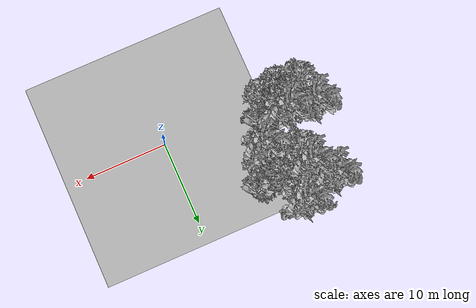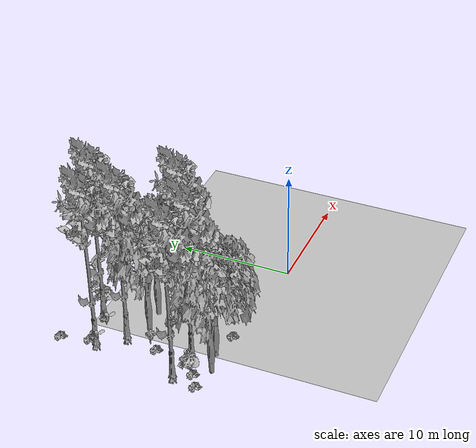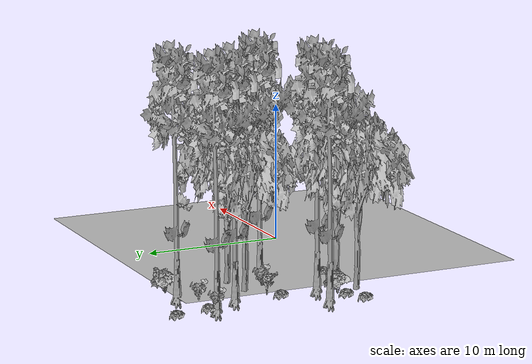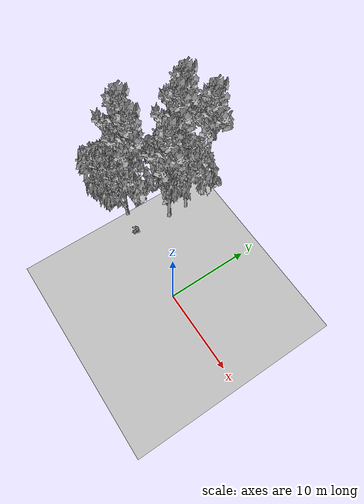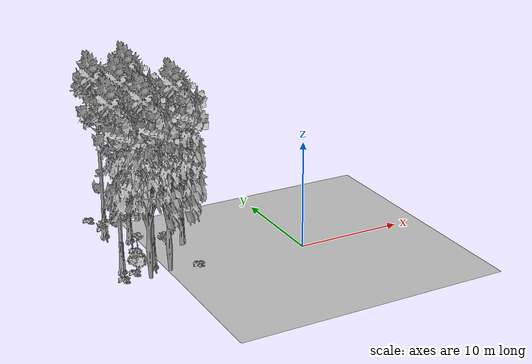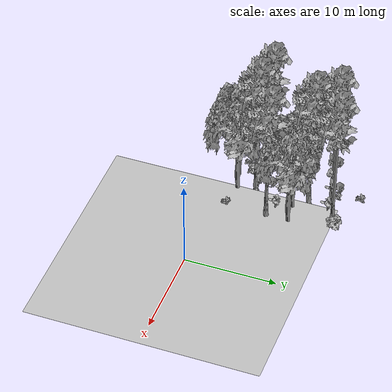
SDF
<sdf version="1.7">
 <world name="default">
  <model name="ground_plane">
   <static>1</static>
   <link name="link">
    <collision name="collision">
     <pose>-50 0 0 0 -0 0</pose>
     <geometry><plane><normal>0 0 1</normal><size>80 80</size></plane></geometry>
     <surface><contact><ode><min_depth>0.01</min_depth><max_vel>0</max_vel></ode></contact></surface>
    </collision>
    <visual name="grass">
     <cast_shadows>0</cast_shadows>
     <geometry>
      <mesh>
       <scale>0.46714285714285714 0.46714285714285714 0.1</scale>
       <uri>file://grass_plane/meshes/grass_plane.dae</uri>
      </mesh>
     </geometry>
    </visual>
   </link>
  </model>
  <model name="Tree 18">
   <static>1</static>
   <pose>-14.675197095112946 11.266320430562232 0 1.57079 -0 0</pose>
   <link name="link">
    <collision name="collision">
     <geometry><mesh><scale>3.5 5 3.5</scale><uri>model://tree_9/meshes/tree_9.obj</uri></mesh></geometry>
    </collision>
    <visual name="visual">
     <geometry><mesh><scale>3.5 5 3.5</scale><uri>model://tree_9/meshes/tree_9.obj</uri></mesh></geometry>
    </visual>
   </link>
  </model>
  <model name="Tree 24">
   <static>1</static>
   <pose>-14.497213452491316 0.858952401795392 0 1.57079 -0 0</pose>
   <link name="link">
    <collision name="collision">
     <geometry><mesh><scale>3.5 5 3.5</scale><uri>model://tree_2/meshes/tree_2.obj</uri></mesh></geometry>
    </collision>
    <visual name="visual">
     <geometry><mesh><scale>3.5 5 3.5</scale><uri>model://tree_2/meshes/tree_2.obj</uri></mesh></geometry>
    </visual>
   </link>
  </model>
  <model name="Tree 126">
   <static>1</static>
   <pose>-13.16946752182264 3.2214218753032213 0 1.57079 -0 0</pose>
   <link name="link">
    <collision name="collision">
     <geometry><mesh><scale>3.5 5 3.5</scale><uri>model://tree_9/meshes/tree_9.obj</uri></mesh></geometry>
    </collision>
    <visual name="visual">
     <geometry><mesh><scale>3.5 5 3.5</scale><uri>model://tree_9/meshes/tree_9.obj</uri></mesh></geometry>
    </visual>
   </link>
  </model>
  <model name="Tree 199">
   <static>1</static>
   <pose>-12.454922618919966 1.3901071848798523 0 1.57079 -0 0</pose>
   <link name="link">
    <collision name="collision">
     <geometry><mesh><scale>3.5 5 3.5</scale><uri>model://tree_2/meshes/tree_2.obj</uri></mesh></geometry>
    </collision>
    <visual name="visual">
     <geometry><mesh><scale>3.5 5 3.5</scale><uri>model://tree_2/meshes/tree_2.obj</uri></mesh></geometry>
    </visual>
   </link>
  </model>
  <model name="Tree 204">
   <static>1</static>
   <pose>-9.372004502115061 8.09695950699546 0 1.57079 -0 0</pose>
   <link name="link">
    <collision name="collision">
     <geometry><mesh><scale>3.5 5 3.5</scale><uri>model://tree_2/meshes/tree_2.obj</uri></mesh></geometry>
    </collision>
    <visual name="visual">
     <geometry><mesh><scale>3.5 5 3.5</scale><uri>model://tree_2/meshes/tree_2.obj</uri></mesh></geometry>
    </visual>
   </link>
  </model>
  <model name="Tree 261">
   <static>1</static>
   <pose>-15.938443376063656 3.6448453752847456 0 1.57079 -0 0</pose>
   <link name="link">
    <collision name="collision">
     <geometry><mesh><scale>3.5 5 3.5</scale><uri>model://tree_9/meshes/tree_9.obj</uri></mesh></geometry>
    </collision>
    <visual name="visual">
     <geometry><mesh><scale>3.5 5 3.5</scale><uri>model://tree_9/meshes/tree_9.obj</uri></mesh></geometry>
    </visual>
   </link>
  </model>
  <model name="Tree 295">
   <static>1</static>
   <pose>-11.642984708136105 7.8257958188273165 0 1.57079 -0 0</pose>
   <link name="link">
    <collision name="collision">
     <geometry><mesh><scale>3.5 5 3.5</scale><uri>model://tree_2/meshes/tree_2.obj</uri></mesh></geometry>
    </collision>
    <visual name="visual">
     <geometry><mesh><scale>3.5 5 3.5</scale><uri>model://tree_2/meshes/tree_2.obj</uri></mesh></geometry>
    </visual>
   </link>
  </model>
  <model name="Tree 356">
   <static>1</static>
   <pose>-10.916500226961418 12.506268063212787 0 1.57079 -0 0</pose>
   <link name="link">
    <collision name="collision">
     <geometry><mesh><scale>3.5 5 3.5</scale><uri>model://tree_9/meshes/tree_9.obj</uri></mesh></geometry>
    </collision>
    <visual name="visual">
     <geometry><mesh><scale>3.5 5 3.5</scale><uri>model://tree_9/meshes/tree_9.obj</uri></mesh></geometry>
    </visual>
   </link>
  </model>
  <model name="Tree 411">
   <static>1</static>
   <pose>-9.29969918573861 5.669478298437085 0 1.57079 -0 0</pose>
   <link name="link">
    <collision name="collision">
     <geometry><mesh><scale>3.5 5 3.5</scale><uri>model://tree_9/meshes/tree_9.obj</uri></mesh></geometry>
    </collision>
    <visual name="visual">
     <geometry><mesh><scale>3.5 5 3.5</scale><uri>model://tree_9/meshes/tree_9.obj</uri></mesh></geometry>
    </visual>
   </link>
  </model>
  <model name="Tree 478">
   <static>1</static>
   <pose>-13.016524943283251 9.210867996169611 0 1.57079 -0 0</pose>
   <link name="link">
    <collision name="collision">
     <geometry><mesh><scale>3.5 5 3.5</scale><uri>model://tree_9/meshes/tree_9.obj</uri></mesh></geometry>
    </collision>
    <visual name="visual">
     <geometry><mesh><scale>3.5 5 3.5</scale><uri>model://tree_9/meshes/tree_9.obj</uri></mesh></geometry>
    </visual>
   </link>
  </model>
  <model name="Bush 55">
   <static>1</static>
   <pose>-12.265187323185337 11.538039808076476 0 1.57079 -0 0</pose>
   <link name="link">
    <collision name="collision">
     <geometry><mesh><scale>2 2 2</scale><uri>model://bush_0/meshes/bush_0.obj</uri></mesh></geometry>
     <surface><contact><collide_without_contact>false</collide_without_contact></contact></surface>
    </collision>
    <visual name="visual">
     <geometry><mesh><scale>2 2 2</scale><uri>model://bush_0/meshes/bush_0.obj</uri></mesh></geometry>
    </visual>
   </link>
  </model>
  <model name="Bush 78">
   <static>1</static>
   <pose>-15.195951787851978 14.300576971078335 0 1.57079 -0 0</pose>
   <link name="link">
    <collision name="collision">
     <geometry><mesh><scale>2 2 2</scale><uri>model://bush_2/meshes/bush_2.obj</uri></mesh></geometry>
     <surface><contact><collide_without_contact>false</collide_without_contact></contact></surface>
    </collision>
    <visual name="visual">
     <geometry><mesh><scale>2 2 2</scale><uri>model://bush_2/meshes/bush_2.obj</uri></mesh></geometry>
    </visual>
   </link>
  </model>
  <model name="Bush 90">
   <static>1</static>
   <pose>-14.878964411390182 2.5196762770583163 0 1.57079 -0 0</pose>
   <link name="link">
    <collision name="collision">
     <geometry><mesh><scale>2 2 2</scale><uri>model://bush_1/meshes/bush_1.obj</uri></mesh></geometry>
     <surface><contact><collide_without_contact>false</collide_without_contact></contact></surface>
    </collision>
    <visual name="visual">
     <geometry><mesh><scale>2 2 2</scale><uri>model://bush_1/meshes/bush_1.obj</uri></mesh></geometry>
    </visual>
   </link>
  </model>
  <model name="Bush 139">
   <static>1</static>
   <pose>-14.634482401752717 11.28475292099752 0 1.57079 -0 0</pose>
   <link name="link">
    <collision name="collision">
     <geometry><mesh><scale>2 2 2</scale><uri>model://bush_0/meshes/bush_0.obj</uri></mesh></geometry>
     <surface><contact><collide_without_contact>false</collide_without_contact></contact></surface>
    </collision>
    <visual name="visual">
     <geometry><mesh><scale>2 2 2</scale><uri>model://bush_0/meshes/bush_0.obj</uri></mesh></geometry>
    </visual>
   </link>
  </model>
  <model name="Bush 203">
   <static>1</static>
   <pose>-16.681152087502376 1.3095926037543109 0 1.57079 -0 0</pose>
   <link name="link">
    <collision name="collision">
     <geometry><mesh><scale>2 2 2</scale><uri>model://bush_2/meshes/bush_2.obj</uri></mesh></geometry>
     <surface><contact><collide_without_contact>false</collide_without_contact></contact></surface>
    </collision>
    <visual name="visual">
     <geometry><mesh><scale>2 2 2</scale><uri>model://bush_2/meshes/bush_2.obj</uri></mesh></geometry>
    </visual>
   </link>
  </model>
  <model name="Bush 248">
   <static>1</static>
   <pose>-14.707011744001829 11.826294192133915 0 1.57079 -0 0</pose>
   <link name="link">
    <collision name="collision">
     <geometry><mesh><scale>2 2 2</scale><uri>model://bush_2/meshes/bush_2.obj</uri></mesh></geometry>
     <surface><contact><collide_without_contact>false</collide_without_contact></contact></surface>
    </collision>
    <visual name="visual">
     <geometry><mesh><scale>2 2 2</scale><uri>model://bush_2/meshes/bush_2.obj</uri></mesh></geometry>
    </visual>
   </link>
  </model>
  <model name="Bush 261">
   <static>1</static>
   <pose>-13.144082691931011 6.979735984859339 0 1.57079 -0 0</pose>
   <link name="link">
    <collision name="collision">
     <geometry><mesh><scale>2 2 2</scale><uri>model://bush_5/meshes/bush_5.obj</uri></mesh></geometry>
     <surface><contact><collide_without_contact>false</collide_without_contact></contact></surface>
    </collision>
    <visual name="visual">
     <geometry><mesh><scale>2 2 2</scale><uri>model://bush_5/meshes/bush_5.obj</uri></mesh></geometry>
    </visual>
   </link>
  </model>
  <model name="Bush 357">
   <static>1</static>
   <pose>-9.830119130792113 1.0016270764457573 0 1.57079 -0 0</pose>
   <link name="link">
    <collision name="collision">
     <geometry><mesh><scale>2 2 2</scale><uri>model://bush_2/meshes/bush_2.obj</uri></mesh></geometry>
     <surface><contact><collide_without_contact>false</collide_without_contact></contact></surface>
    </collision>
    <visual name="visual">
     <geometry><mesh><scale>2 2 2</scale><uri>model://bush_2/meshes/bush_2.obj</uri></mesh></geometry>
    </visual>
   </link>
  </model>
  <model name="Bush 520">
   <static>1</static>
   <pose>-15.400296432176063 2.0896753267328876 0 1.57079 -0 0</pose>
   <link name="link">
    <collision name="collision">
     <geometry><mesh><scale>2 2 2</scale><uri>model://bush_2/meshes/bush_2.obj</uri></mesh></geometry>
     <surface><contact><collide_without_contact>false</collide_without_contact></contact></surface>
    </collision>
    <visual name="visual">
     <geometry><mesh><scale>2 2 2</scale><uri>model://bush_2/meshes/bush_2.obj</uri></mesh></geometry>
    </visual>
   </link>
  </model>
  <model name="Bush 560">
   <static>1</static>
   <pose>-13.783632038815117 6.147798922234031 0 1.57079 -0 0</pose>
   <link name="link">
    <collision name="collision">
     <geometry><mesh><scale>2 2 2</scale><uri>model://bush_2/meshes/bush_2.obj</uri></mesh></geometry>
     <surface><contact><collide_without_contact>false</collide_without_contact></contact></surface>
    </collision>
    <visual name="visual">
     <geometry><mesh><scale>2 2 2</scale><uri>model://bush_2/meshes/bush_2.obj</uri></mesh></geometry>
    </visual>
   </link>
  </model>
  <model name="Bush 585">
   <static>1</static>
   <pose>-9.766785194653128 12.883403108795434 0 1.57079 -0 0</pose>
   <link name="link">
    <collision name="collision">
     <geometry><mesh><scale>2 2 2</scale><uri>model://bush_1/meshes/bush_1.obj</uri></mesh></geometry>
     <surface><contact><collide_without_contact>false</collide_without_contact></contact></surface>
    </collision>
    <visual name="visual">
     <geometry><mesh><scale>2 2 2</scale><uri>model://bush_1/meshes/bush_1.obj</uri></mesh></geometry>
    </visual>
   </link>
  </model>
  <model name="Bush 597">
   <static>1</static>
   <pose>-10.73538621435705 6.238610790048497 0 1.57079 -0 0</pose>
   <link name="link">
    <collision name="collision">
     <geometry><mesh><scale>2 2 2</scale><uri>model://bush_0/meshes/bush_0.obj</uri></mesh></geometry>
     <surface><contact><collide_without_contact>false</collide_without_contact></contact></surface>
    </collision>
    <visual name="visual">
     <geometry><mesh><scale>2 2 2</scale><uri>model://bush_0/meshes/bush_0.obj</uri></mesh></geometry>
    </visual>
   </link>
  </model>
 </world>
</sdf>
